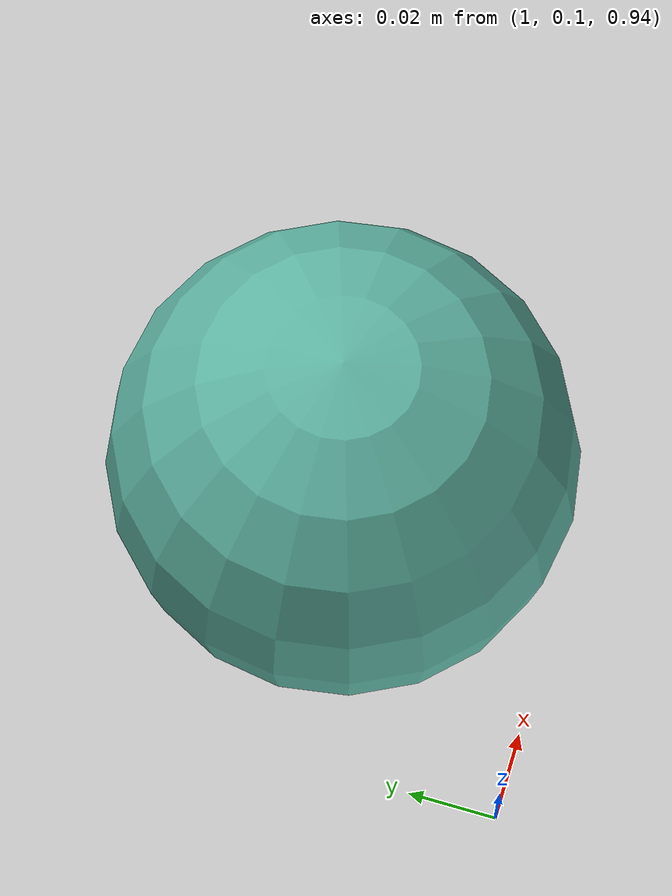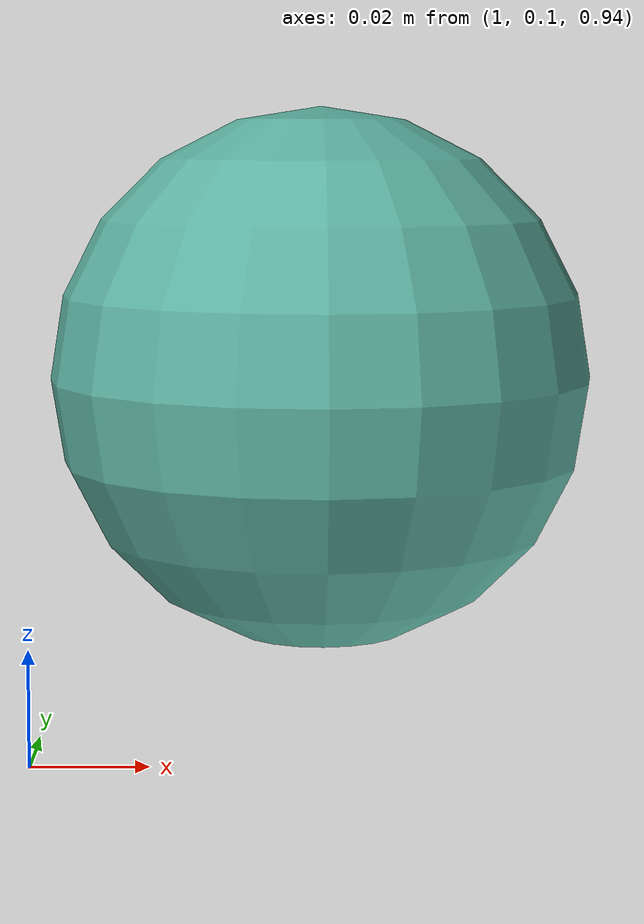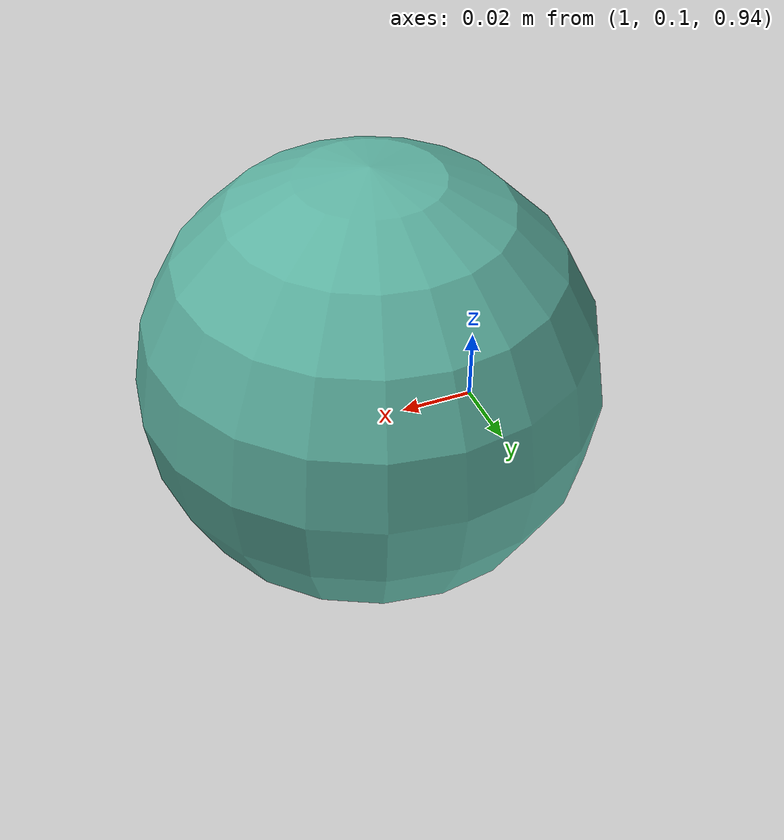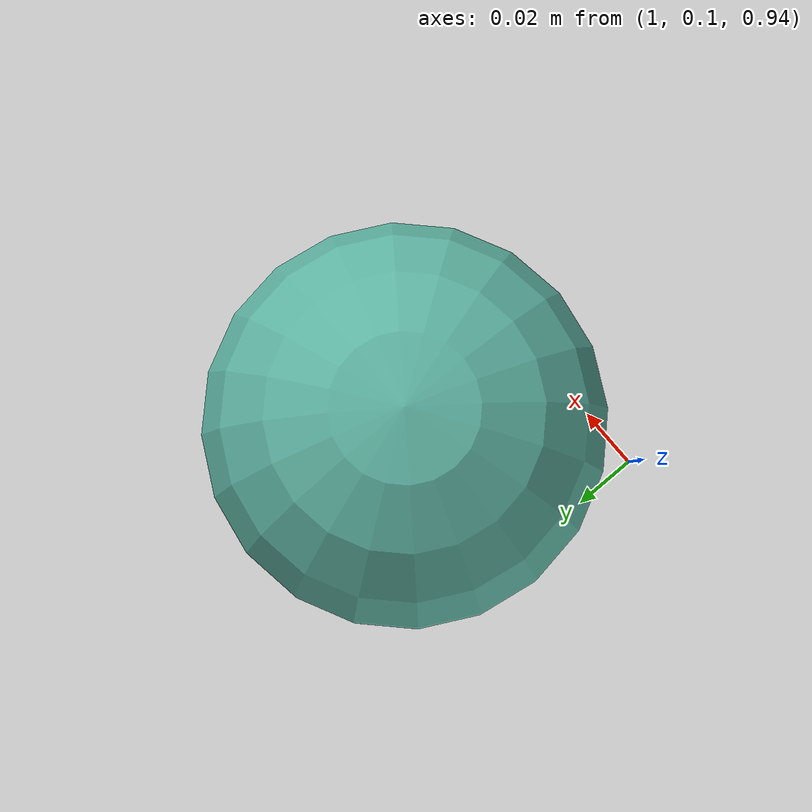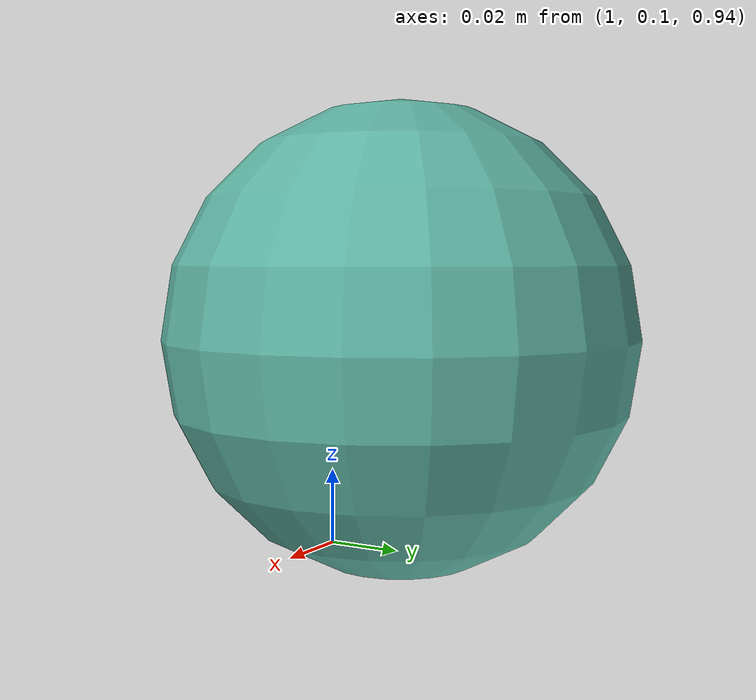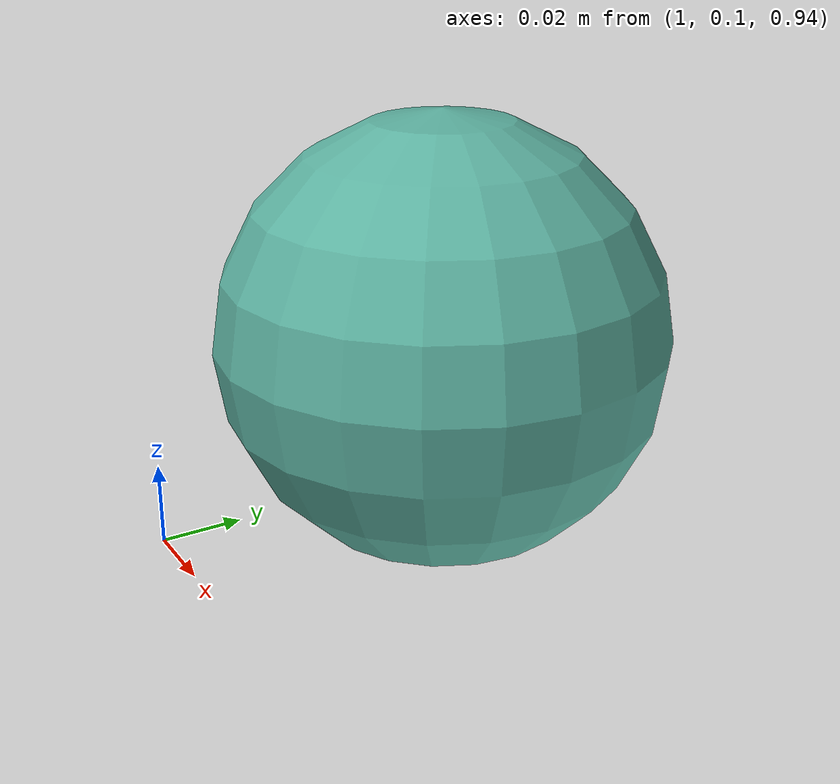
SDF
<?xml version="1.0"?>
<sdf version="1.7">
  <model name="ball">
    <pose>1.05 .15 1 0 0 0</pose>
    <link name="ball">
      <inertial>
        <mass>.005</mass>
      </inertial>
      <visual name="ball">
        <geometry>
          <sphere>
            <radius>0.05</radius>
          </sphere>
        </geometry>
        <material>
          <diffuse>0.36570588 0.70196078 0.6352941176 1.0</diffuse>
        </material>
      </visual>
      <collision name="ball_collision">
        <geometry>
          <sphere>
            <radius>0.05</radius>
          </sphere>
        </geometry>
        <surface>
            <bounce>
                <restitution_coefficient> .5 </restitution_coefficient>
                <threshold>0.</threshold>
            </bounce>
            <friction>
              <ode>
                <mu>0</mu>
                <mu2>0</mu2>
              </ode>
            </friction>
        </surface>
      </collision>
    </link>
  </model>
</sdf>
